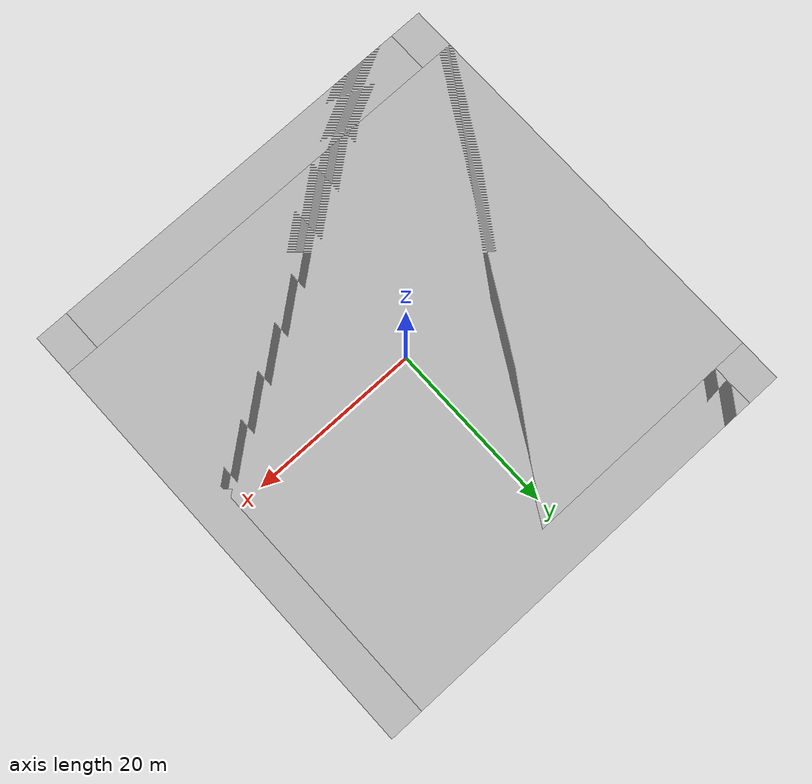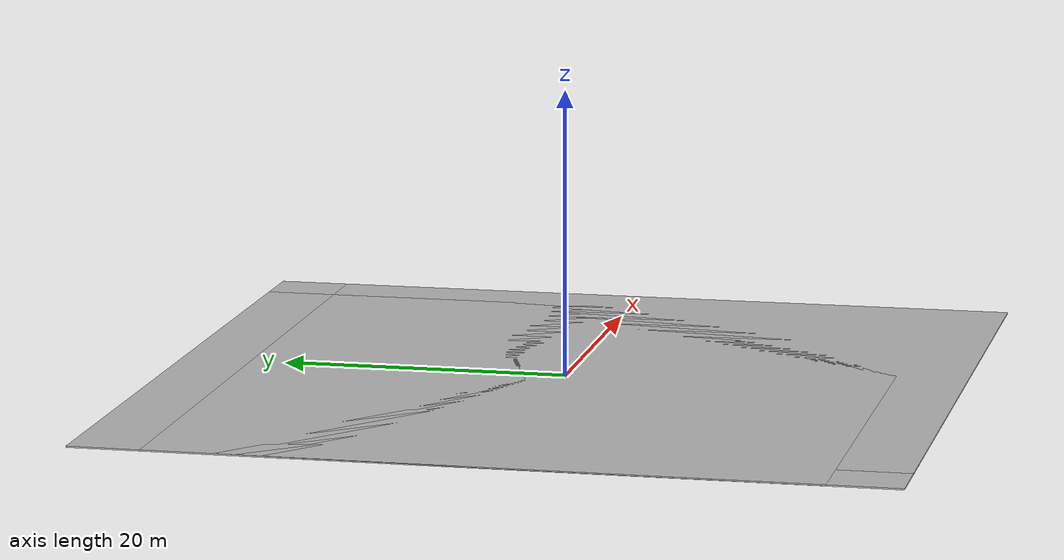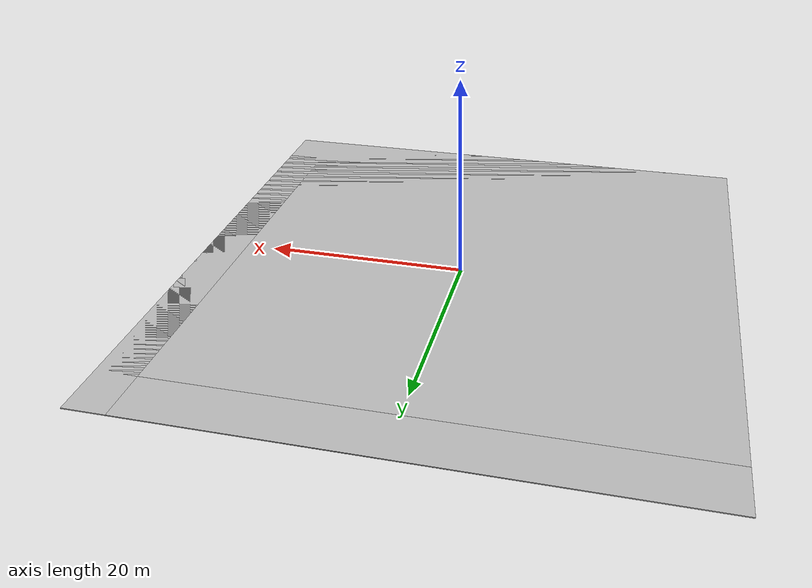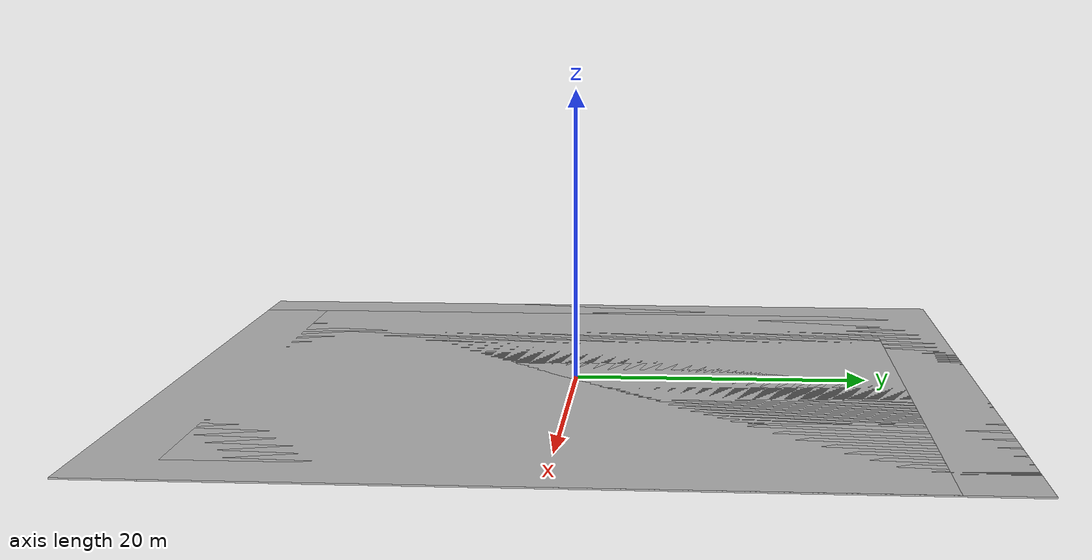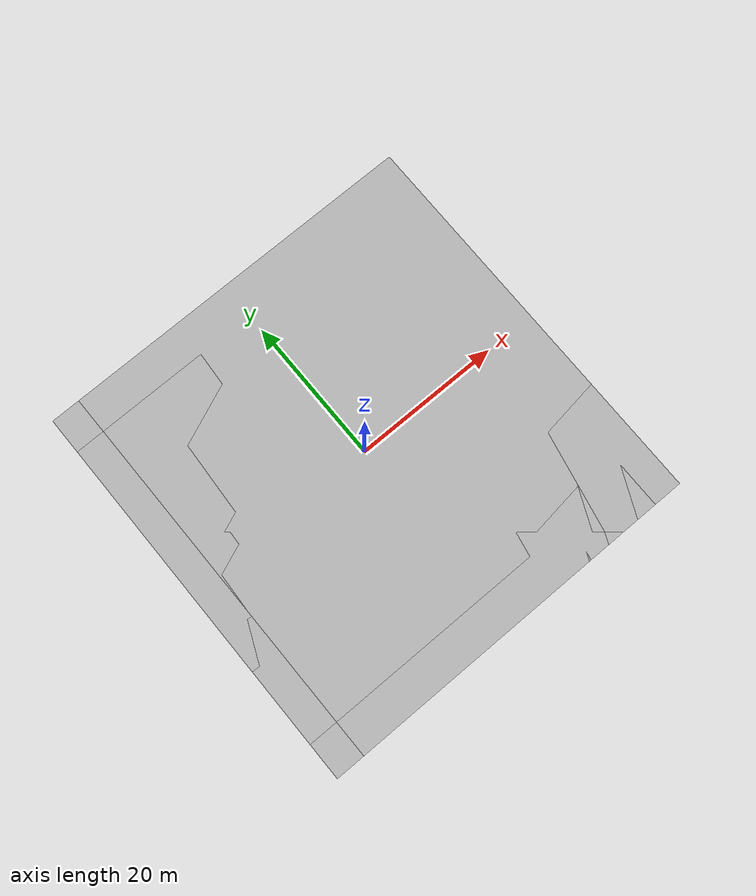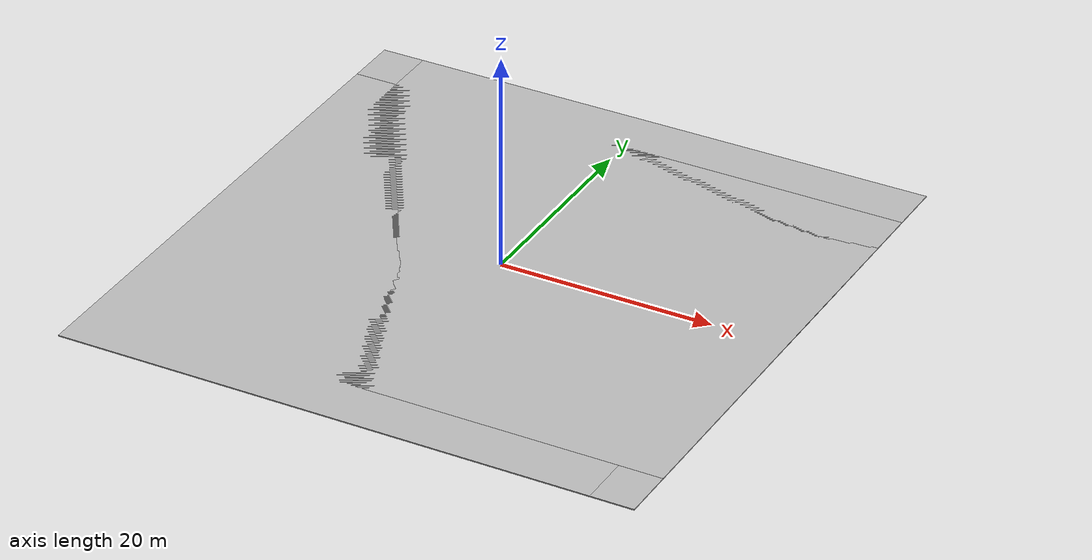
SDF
<?xml version="1.0" ?>
<sdf version="1.5">
  <model name="mud_box">
    <static>true</static>
    <link name="link">
      <collision name="collision">
        <geometry>
          <box>
            <size>50 50 0.1</size>
          </box>
        </geometry>
      </collision>
      <visual name="visual_1">
        <pose>-2 2.5 0 0 0 0</pose>
        <cast_shadows>false</cast_shadows>
        <geometry>
          <box>
            <size>50 50 0.1</size>
          </box>
        </geometry>
        <material>
          <script>
            <uri>model://mud_box/materials/scripts</uri>
            <uri>model://mud_box/materials/textures</uri>
            <name>vrc/mud</name>
          </script>
        </material>
      </visual>
      <visual name="visual_2">
        <pose>2 2.5 0 0 0 0</pose>
        <cast_shadows>false</cast_shadows>
        <geometry>
          <box>
            <size>50 50 0.1</size>
          </box>
        </geometry>
        <material>
          <script>
            <uri>model://mud_box/materials/scripts</uri>
            <uri>model://mud_box/materials/textures</uri>
            <name>vrc/mud</name>
          </script>
        </material>
      </visual>
      <visual name="visual_3">
        <pose>2 -2.5 0 0 0 0</pose>
        <cast_shadows>false</cast_shadows>
        <geometry>
          <box>
            <size>50 50 0.1</size>
          </box>
        </geometry>
        <material>
          <script>
            <uri>model://mud_box/materials/scripts</uri>
            <uri>model://mud_box/materials/textures</uri>
            <name>vrc/mud</name>
          </script>
        </material>
      </visual>
      <visual name="visual_4">
        <pose>-2 -2.5 0 0 0 0</pose>
        <cast_shadows>false</cast_shadows>
        <geometry>
          <box>
            <size>50 50 0.1</size>
          </box>
        </geometry>
        <material>
          <script>
            <uri>model://mud_box/materials/scripts</uri>
            <uri>model://mud_box/materials/textures</uri>
            <name>vrc/mud</name>
          </script>
        </material>
      </visual>
    </link>
  </model>
</sdf>
